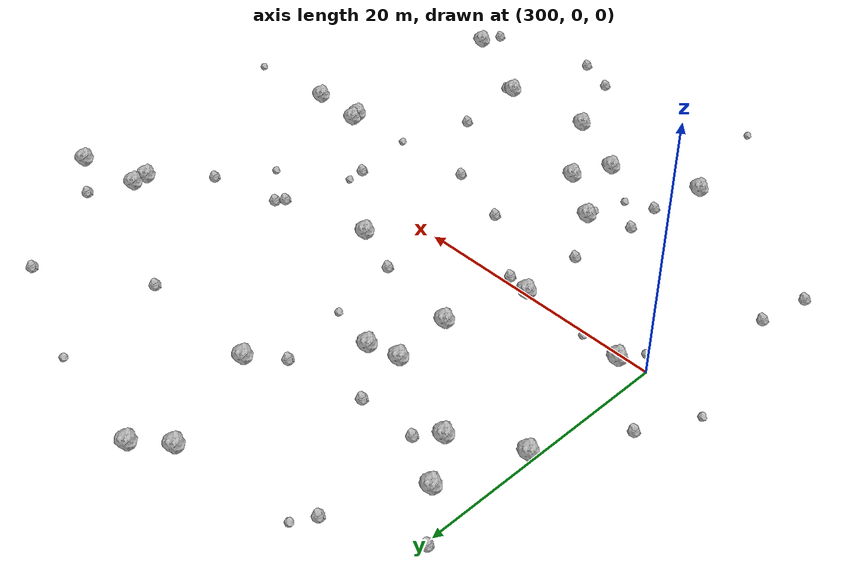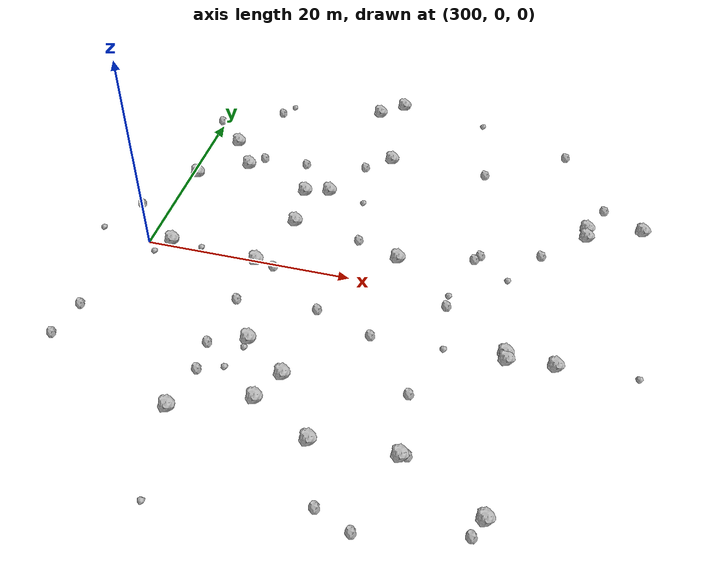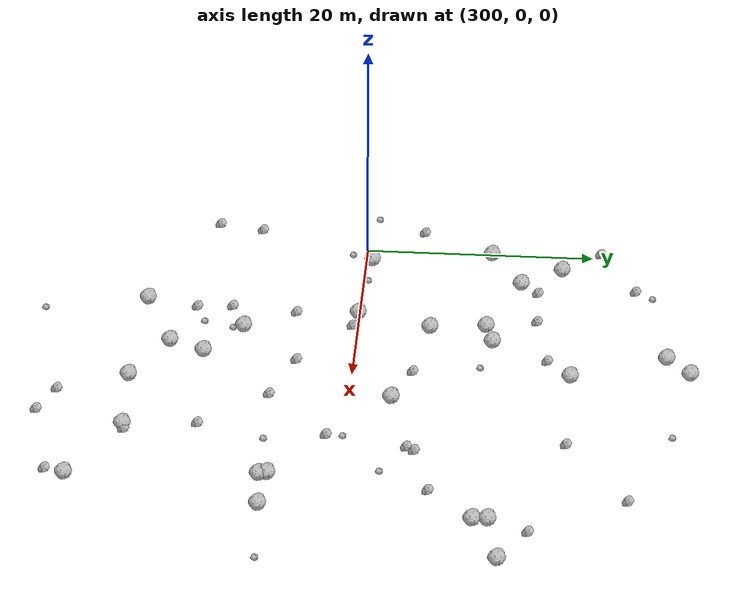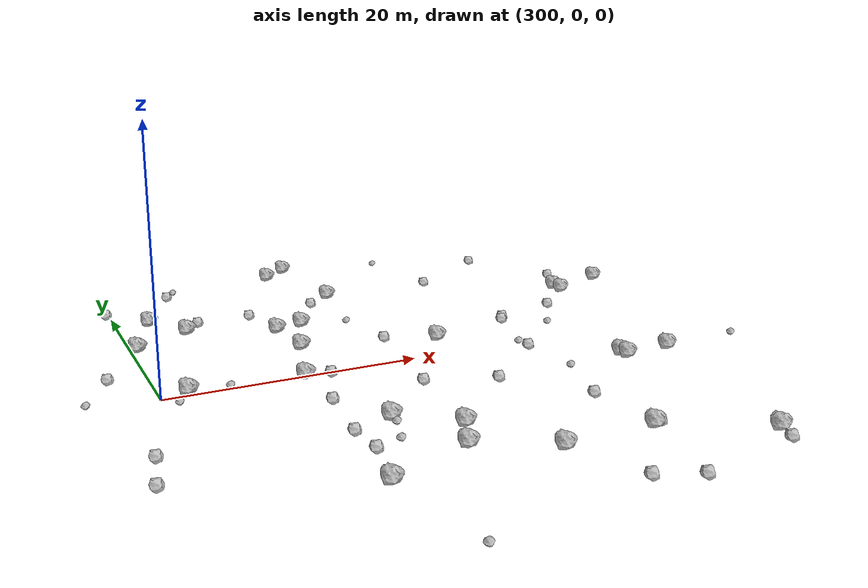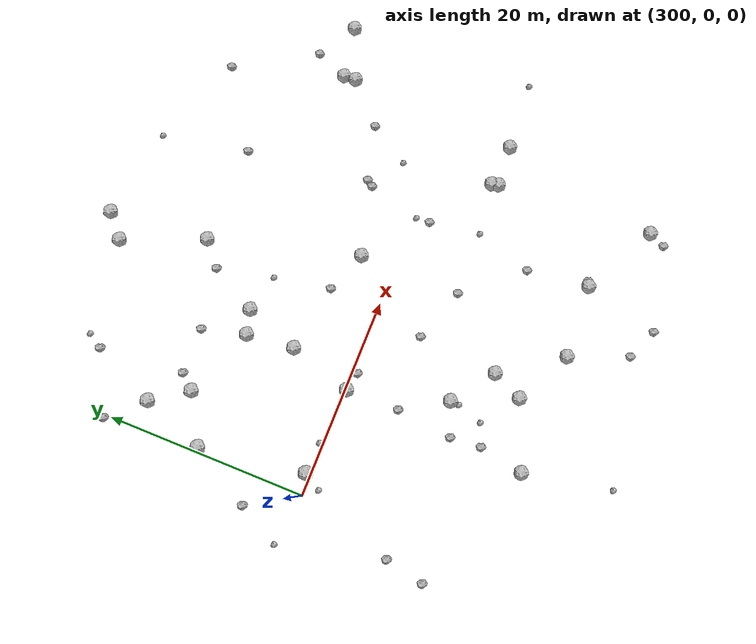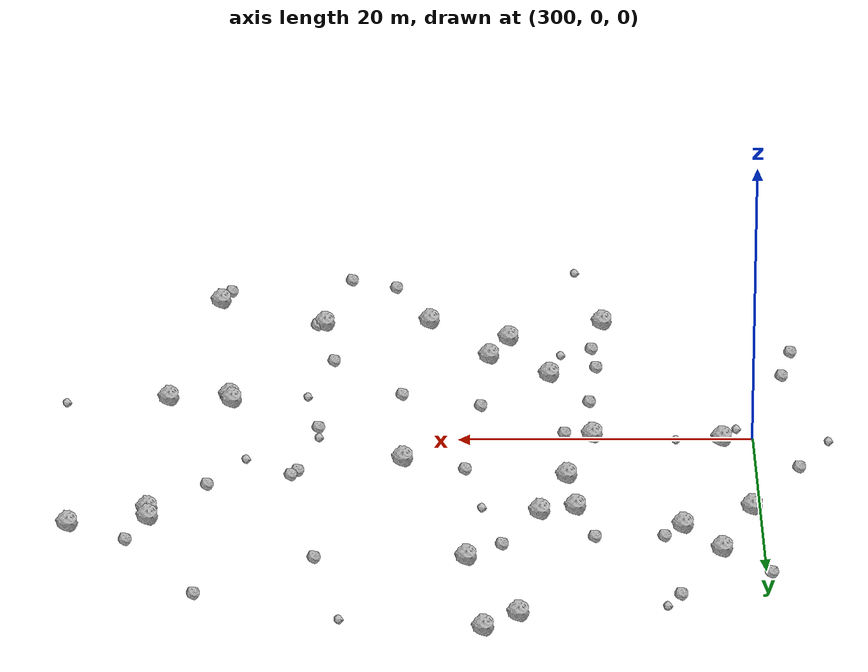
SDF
<sdf version="1.6">
 <world name="default">
  <include><uri>model://sun</uri></include>
  <model name="rock1_8_2">
   <include><uri>model://rock1</uri><pose>340.87461593465775 11.092972409473788 0.5 0 0 0</pose></include>
  </model>
  <model name="rock1_8_3">
   <include><uri>model://rock1</uri><pose>302.15109871553994 0.5304538432440467 0.5 0 0 0</pose></include>
  </model>
  <model name="rock1_8_4">
   <include><uri>model://rock1</uri><pose>316.39752169866915 -15.916068745006386 0.5 0 0 0</pose></include>
  </model>
  <model name="rock1_8_5">
   <include><uri>model://rock1</uri><pose>321.91759653704213 -18.822182573375517 0.5 0 0 0</pose></include>
  </model>
  <model name="rock1_8_6">
   <include><uri>model://rock1</uri><pose>300.5741017466401 11.07278624744503 0.5 0 0 0</pose></include>
  </model>
  <model name="rock1_8_7">
   <include><uri>model://rock1</uri><pose>346.0879861380323 13.29696358403698 0.5 0 0 0</pose></include>
  </model>
  <model name="rock1_8_8">
   <include><uri>model://rock1</uri><pose>335.76532263622903 -6.530752582006812 0.5 0 0 0</pose></include>
  </model>
  <model name="rock1_8_9">
   <include><uri>model://rock1</uri><pose>339.92249647086453 -6.211831779498347 0.5 0 0 0</pose></include>
  </model>
  <model name="rock1_8_10">
   <include><uri>model://rock1</uri><pose>310.9416832119743 -0.10971809837862168 0.5 0 0 0</pose></include>
  </model>
  <model name="rock1_8_11">
   <include><uri>model://rock1</uri><pose>313.67746943413533 -9.831563919749573 0.5 0 0 0</pose></include>
  </model>
  <model name="rock1_8_12">
   <include><uri>model://rock1</uri><pose>323.85134844122155 3.5484671563415375 0.5 0 0 0</pose></include>
  </model>
  <model name="rock1_8_13">
   <include><uri>model://rock1</uri><pose>305.27875147566976 13.823255820233143 0.5 0 0 0</pose></include>
  </model>
  <model name="rock1_8_14">
   <include><uri>model://rock1</uri><pose>316.4033454831078 26.58902408945731 0.5 0 0 0</pose></include>
  </model>
  <model name="rock1_8_15">
   <include><uri>model://rock1</uri><pose>340.80558483716624 12.342874761595233 0.5 0 0 0</pose></include>
  </model>
  <model name="rock1_8_16">
   <include><uri>model://rock1</uri><pose>317.79985222245074 -12.896934282444576 0.5 0 0 0</pose></include>
  </model>
  <model name="rock1_8_17">
   <include><uri>model://rock1</uri><pose>335.60203929050795 -5.855423800529131 0.5 0 0 0</pose></include>
  </model>
  <model name="rock1_8_18">
   <include><uri>model://rock1</uri><pose>309.79464901684855 -18.542874696304175 0.5 0 0 0</pose></include>
  </model>
  <model name="rock1_8_19">
   <include><uri>model://rock1</uri><pose>319.69651770195065 18.46164009809911 0.5 0 0 0</pose></include>
  </model>
  <model name="rock1_8_20">
   <include><uri>model://rock1</uri><pose>329.2942648017585 -18.462772224028186 0.5 0 0 0</pose></include>
  </model>
  <model name="rock1_8_21">
   <include><uri>model://rock1</uri><pose>312.3417675468819 11.030121393111074 0.5 0 0 0</pose></include>
  </model>
  <model name="rock1_8_22">
   <include><uri>model://rock1</uri><pose>336.67004854499027 -22.371032356800992 0.5 0 0 0</pose></include>
  </model>
  <model name="rock1_8_23">
   <include><uri>model://rock1</uri><pose>318.7000358143554 28.588918676462022 0.5 0 0 0</pose></include>
  </model>
  <model name="rock1_8_24">
   <include><uri>model://rock1</uri><pose>314.7437592147115 11.68090879440254 0.5 0 0 0</pose></include>
  </model>
  <model name="rock1_8_25">
   <include><uri>model://rock1</uri><pose>302.8344593834667 17.350807579825457 0.5 0 0 0</pose></include>
  </model>
  <model name="rock1_8_26">
   <include><uri>model://rock1</uri><pose>312.8203988964967 6.213578886457427 0.5 0 0 0</pose></include>
  </model>
  <model name="rock2_8_0">
   <include><uri>model://rock2</uri><pose>330.89567680734626 5.2594379784338585 0.3 0 0 0</pose></include>
  </model>
  <model name="rock2_8_1">
   <include><uri>model://rock2</uri><pose>331.35289720634495 5.915398148007675 0.3 0 0 0</pose></include>
  </model>
  <model name="rock2_8_2">
   <include><uri>model://rock2</uri><pose>335.93558032162815 -24.046488493592726 0.3 0 0 0</pose></include>
  </model>
  <model name="rock2_8_3">
   <include><uri>model://rock2</uri><pose>317.2949782504817 16.469483314489104 0.3 0 0 0</pose></include>
  </model>
  <model name="rock2_8_4">
   <include><uri>model://rock2</uri><pose>296.7544121454026 -13.488172722982636 0.3 0 0 0</pose></include>
  </model>
  <model name="rock2_8_5">
   <include><uri>model://rock2</uri><pose>310.9872916747942 -5.450726095153357 0.3 0 0 0</pose></include>
  </model>
  <model name="rock2_8_6">
   <include><uri>model://rock2</uri><pose>329.67008477935843 18.36187322351001 0.3 0 0 0</pose></include>
  </model>
  <model name="rock2_8_7">
   <include><uri>model://rock2</uri><pose>299.7107064548587 20.714567640085484 0.3 0 0 0</pose></include>
  </model>
  <model name="rock2_8_8">
   <include><uri>model://rock2</uri><pose>297.08521332089634 4.950176252706683 0.3 0 0 0</pose></include>
  </model>
  <model name="rock2_8_9">
   <include><uri>model://rock2</uri><pose>310.61934797250814 -14.13866001528207 0.3 0 0 0</pose></include>
  </model>
  <model name="rock2_8_10">
   <include><uri>model://rock2</uri><pose>336.94600835501194 7.361445748268565 0.3 0 0 0</pose></include>
  </model>
  <model name="rock2_8_11">
   <include><uri>model://rock2</uri><pose>323.83709911838827 -6.713523440300577 0.3 0 0 0</pose></include>
  </model>
  <model name="rock2_8_12">
   <include><uri>model://rock2</uri><pose>328.5616871819682 -12.271591375447105 0.3 0 0 0</pose></include>
  </model>
  <model name="rock2_8_13">
   <include><uri>model://rock2</uri><pose>297.5553626243732 -9.589697328215728 0.3 0 0 0</pose></include>
  </model>
  <model name="rock2_8_14">
   <include><uri>model://rock2</uri><pose>311.14783017599666 15.408911639260964 0.3 0 0 0</pose></include>
  </model>
  <model name="rock2_8_15">
   <include><uri>model://rock2</uri><pose>305.75349726100956 23.85701039276688 0.3 0 0 0</pose></include>
  </model>
  <model name="rock2_8_16">
   <include><uri>model://rock2</uri><pose>342.1606810298783 15.632870390970545 0.3 0 0 0</pose></include>
  </model>
  <model name="rock2_8_17">
   <include><uri>model://rock2</uri><pose>312.79796590061653 -0.4710624023472434 0.3 0 0 0</pose></include>
  </model>
  <model name="rock2_8_18">
   <include><uri>model://rock2</uri><pose>329.8011847154549 -18.290681959438064 0.3 0 0 0</pose></include>
  </model>
  <model name="rock2_8_19">
   <include><uri>model://rock2</uri><pose>306.5362089760546 15.332796143064222 0.3 0 0 0</pose></include>
  </model>
  <model name="rock2_8_20">
   <include><uri>model://rock2</uri><pose>327.3800478868182 -25.931266056715994 0.3 0 0 0</pose></include>
  </model>
  <model name="rock2_8_21">
   <include><uri>model://rock2</uri><pose>329.5613888782176 -1.4849561596652023 0.3 0 0 0</pose></include>
  </model>
  <model name="rock2_8_22">
   <include><uri>model://rock2</uri><pose>337.45070102472374 23.549087598037183 0.3 0 0 0</pose></include>
  </model>
  <model name="rock2_8_23">
   <include><uri>model://rock2</uri><pose>324.219361774421 -24.61017072311083 0.3 0 0 0</pose></include>
  </model>
  <model name="rock2_8_24">
   <include><uri>model://rock2</uri><pose>319.61986536770763 5.1298091772461305 0.3 0 0 0</pose></include>
  </model>
  <model name="rock2_8_25">
   <include><uri>model://rock2</uri><pose>310.3728339685004 -11.071176022174697 0.3 0 0 0</pose></include>
  </model>
  <model name="rock2_8_26">
   <include><uri>model://rock2</uri><pose>318.44484380679046 -4.867123081241587 0.3 0 0 0</pose></include>
  </model>
  <model name="rock3_8_0">
   <include><uri>model://rock3</uri><pose>311.4583398090333 -27.32634588003221 0.2 0 0 0</pose></include>
  </model>
  <model name="rock3_8_1">
   <include><uri>model://rock3</uri><pose>327.95806692814216 27.086001113402276 0.2 0 0 0</pose></include>
  </model>
  <model name="rock3_8_2">
   <include><uri>model://rock3</uri><pose>312.75148229317665 -13.305124949467785 0.2 0 0 0</pose></include>
  </model>
  <model name="rock3_8_3">
   <include><uri>model://rock3</uri><pose>301.04029761504694 -1.2492558740303394 0.2 0 0 0</pose></include>
  </model>
  <model name="rock3_8_4">
   <include><uri>model://rock3</uri><pose>305.2030812551865 0.3732128539038939 0.2 0 0 0</pose></include>
  </model>
  <model name="rock3_8_5">
   <include><uri>model://rock3</uri><pose>294.85601342561046 0.7271115009903326 0.2 0 0 0</pose></include>
  </model>
  <model name="rock3_8_6">
   <include><uri>model://rock3</uri><pose>318.5235271176425 10.789712046582324 0.2 0 0 0</pose></include>
  </model>
  <model name="rock3_8_7">
   <include><uri>model://rock3</uri><pose>306.6457676430723 25.32530983052454 0.2 0 0 0</pose></include>
  </model>
  <model name="rock3_8_8">
   <include><uri>model://rock3</uri><pose>334.36851628043047 3.230858199058524 0.2 0 0 0</pose></include>
  </model>
  <model name="rock3_8_9">
   <include><uri>model://rock3</uri><pose>346.844972169765 -5.8046914581905185 0.2 0 0 0</pose></include>
  </model>
  <model name="rock3_8_10">
   <include><uri>model://rock3</uri><pose>329.47037247655993 -0.11592553529132132 0.2 0 0 0</pose></include>
  </model>
  <model name="rock3_8_11">
   <include><uri>model://rock3</uri><pose>313.59033935890324 -10.767947110412738 0.2 0 0 0</pose></include>
  </model>
  <model name="rock3_8_12">
   <include><uri>model://rock3</uri><pose>330.29600499788523 -6.623012126177532 0.2 0 0 0</pose></include>
  </model>
 </world>
</sdf>
